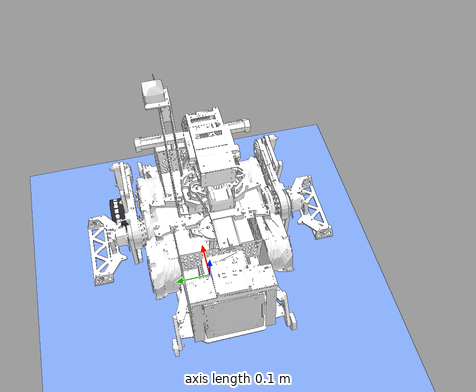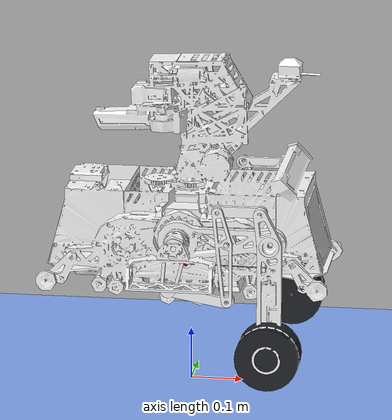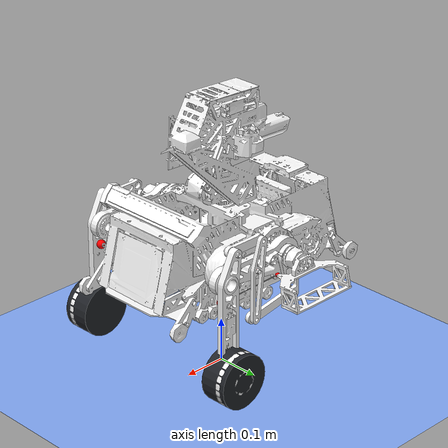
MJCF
<?xml version='1.0' encoding='utf-8'?>
<mujoco model="infantry_balance_v1_fix">
  <compiler angle="radian" meshdir="../../../infantry_V4/meshes" autolimits="true" />
  <default>
    <geom contype="1" conaffinity="2" />
  </default>
  <asset>
    <mesh name="base_Link_del" file="base_link_del.STL" />
    <mesh name="rf0_Link" file="rf0_Link.STL" />
    <mesh name="rf1_Link" file="rf1_Link.STL" />
    <mesh name="r_wheel_Link" file="r_wheel_Link.STL" />
    <mesh name="lf0_Link" file="lf0_Link.STL" />
    <mesh name="lf1_Link" file="lf1_Link.STL" />
    <mesh name="l_wheel_Link" file="l_wheel_Link.STL" />
    <mesh name="r20_Link" file="r20_Link.STL" />
    <mesh name="r21_Link" file="r21_Link.STL" />
    <mesh name="r22_Link" file="r22_Link.STL" />
    <mesh name="r23_Link" file="r23_Link.STL" />
    <mesh name="l20_Link" file="l20_Link.STL" />
    <mesh name="l21_Link" file="l21_Link.STL" />
    <mesh name="l22_Link" file="l22_Link.STL" />
    <mesh name="l23_Link" file="l23_Link.STL" />
    <material name="floor_gray" rgba="0.65 0.65 0.65 1" specular="0.15" shininess="0.6" />
    <texture name="blue_checker_tex" type="2d" builtin="checker" width="512" height="512" rgb1="0.2 0.4 0.9" rgb2="0.8 0.9 1.0" />
    <material name="blue_checker_mat" texture="blue_checker_tex" texrepeat="20 20" reflectance="0.1" />
  </asset>
  <worldbody>
    <geom name="floor" type="plane" size="40 40 0.1" material="blue_checker_mat" contype="2" conaffinity="1" condim="3" friction="1.0 0.005 0.0001" />
    <body name="base_Link_del" pos="0 0 0.24" quat="1 0 0 0">
      <freejoint />
      <inertial mass="14.528116" pos="-0.0040606 0 0.09714204" fullinertia="0.28353 0.35249 0.3701 0 -0.00825907 0" />
      <site name="imu_site" pos="0 0 0" size="0.005" />
      <camera name="follow_cam" pos="0 0 0.45" xyaxes="0 1 0 0 0 1" fovy="55" />
      <geom name="base_Link_del_geom" type="mesh" rgba="1 1 1 1" mesh="base_Link_del" priority="2" condim="1" friction="0 0 0" />
      <body name="rf0_Link" pos="0 -0.1877 0.08725" quat="0.707105 0.707108 0 0">
        <inertial mass="1.113" pos="0.0552763 -0.0165544 -0.00927161" fullinertia="0.00207010035495505 0.00467305160669649 0.00640363563267114 -0.000229068850401246 -0.000154292053832576 0.000110059488301974" />
        <joint name="rf0_Joint" pos="0 0 0" axis="0 0 1" armature="0.01" range="-100 100" actuatorfrcrange="-30 30" damping="0.2" />
        <geom type="mesh" rgba="1 1 1 1" mesh="rf0_Link" />
        <site name="Right_front_site1" pos="0.09435 0 0.01" size="0.005" rgba="1 0 0 1" />
        <site name="right_lf0_qitanhuang" pos="0.0155 -0.0445 -0.008" size="0.005" rgba="1 0 0 1" />
        <body name="rf1_Link" pos="0.17472 0 0">
          <inertial mass="0.3068715" pos="-0.00283459 -0.0710676 0.0068255" fullinertia="0.0024736574226837 9.26198217762108e-05 0.00253995979605196 0.00012490198105544 -3.42013651698976e-06 3.43411588191672e-05" />
          <joint name="rf1_Joint" pos="0 0 0" axis="0 0 1" armature="0.01" range="-1.1 0.63" actuatorfrcrange="-30 30" damping="0.2" />
          <geom type="mesh" rgba="1 1 1 1" mesh="rf1_Link" />
          <site name="Right_front_site2" pos="-0.0160931 0.0609099 0.01" size="0.005" rgba="1 0 0 1" />
          <site name="right_lf1_qitanhuang" pos="0.005 -0.046 -0.005" size="0.01" rgba="1 0 0 1" />
          <body name="r_wheel_Link" pos="0 -0.208 0.016">
            <inertial mass="0.4904" pos="4.1184e-06 -0.00019289 0.019562" fullinertia="0.00033958 0.00034133 0.0005817 0 0 0" />
            <joint name="r_wheel_Joint" pos="0 0 0" axis="0 0 1" actuatorfrcrange="-30 30" armature="0.005" damping="0.02" />
            <geom type="mesh" rgba="1 1 1 1" mesh="r_wheel_Link" contype="0" conaffinity="0" />
            <geom name="r_wheel_Link_collision" type="cylinder" size="0.06 0.03075" pos="0 0 0.00765" rgba="0.13 0.14 0.16 1" friction="1.0 0.005 0.0001" condim="3" />
          </body>
        </body>
      </body>
      <body name="lf0_Link" pos="0 0.1877 0.08725" quat="0.707105 -0.707108 0 0">
        <inertial mass="1.113" pos="0.0552763 0.0165544 -0.00927161" fullinertia="0.00207010035495505 0.00467305160669649 0.00640363563267114 0.000229068850401246 -0.000154292053832576 -0.000110059488301974" />
        <joint name="lf0_Joint" pos="0 0 0" axis="0 0 1" armature="0.01" range="-100 100" actuatorfrcrange="-30 30" damping="0.2" />
        <geom type="mesh" rgba="1 1 1 1" mesh="lf0_Link" />
        <site name="Left_front_site1" pos="0.09435 0 0.01" size="0.005" rgba="1 0 0 1" />
        <site name="left_lf0_qitanhuang" pos="0.0155 0.0445 -0.008" size="0.005" rgba="1 0 0 1" />
        <body name="lf1_Link" pos="0.17472 0 0">
          <inertial mass="0.3068715" pos="-0.00283459 0.0710676 0.0068255" fullinertia="0.0024736574226837 9.26198217762108e-05 0.00253995979605196 -0.00012490198105544 -3.42013651698976e-06 -3.43411588191672e-05" />
          <joint name="lf1_Joint" pos="0 0 0" axis="0 0 1" armature="0.01" range="-0.63 1.1" actuatorfrcrange="-30 30" damping="0.2" />
          <geom type="mesh" rgba="1 1 1 1" mesh="lf1_Link" />
          <site name="Left_front_site2" pos="-0.0160931 -0.0609099 0.01" size="0.005" rgba="1 0 0 1" />
          <site name="left_lf1_qitanhuang" pos="0.005 0.046 -0.005" size="0.01" rgba="1 0 0 1" />
          <body name="l_wheel_Link" pos="0 0.208 0.016">
            <inertial mass="0.4904" pos="4.1184e-06 0.00019289 0.019562" fullinertia="0.00033958 0.00034133 0.0005817 0 0 0" />
            <joint name="l_wheel_Joint" pos="0 0 0" axis="0 0 1" actuatorfrcrange="-30 30" armature="0.005" damping="0.02" />
            <geom type="mesh" rgba="1 1 1 1" mesh="l_wheel_Link" contype="0" conaffinity="0" />
            <geom name="l_wheel_Link_collision" type="cylinder" size="0.06 0.03075" pos="0 0 0.00765" rgba="0.13 0.14 0.16 1" friction="1.0 0.005 0.0001" condim="3" />
          </body>
        </body>
      </body>
      <body name="r20_Link" pos="0 -0.1877 0.08725" quat="0.707105 0.707108 0 0">
        <inertial mass="0.058433" pos="-0.0077129 -0.044014 0.0053168" fullinertia="8.85970403521288e-05 1.39009997800118e-05 0.000101650459867859 -1.35039754979669e-05 8.2593672519935e-08 4.71265134088624e-07" />
        <joint name="r20_Joint" pos="0 0 0" axis="0 0 1" armature="0.01" actuatorfrcrange="-30 30" damping="0.2" />
        <geom type="mesh" rgba="1 1 1 1" mesh="r20_Link" />
        <body name="r21_Link" pos="-0.016285 -0.092933 0.01">
          <inertial mass="0.042999" pos="0.05374 -0.013258 -0.01451" fullinertia="5.05620226858981e-06 7.38600092966831e-05 7.83150484347271e-05 1.27210140607606e-05 -1.64724699256455e-08 4.38524245406523e-08" />
          <joint name="r21_Link" pos="0 0 0" axis="0 0 1" actuatorfrcrange="-30 30" armature="0.01" damping="0.2" />
          <geom type="mesh" rgba="1 1 1 1" mesh="r21_Link" />
          <body name="r22_Link" pos="0.11063 -0.019387 0">
            <inertial mass="0.065877" pos="-0.006381 0.08888 -0.0045" fullinertia="0.000203739700027235 8.19437997276475e-06 0.00021104 1.8758894496219e-05 1.17150733558447e-20 0" />
            <joint name="r22_Joint" pos="0 0 0" axis="0 0 1" actuatorfrcrange="-30 30" armature="0.01" damping="0.2" />
            <geom type="mesh" rgba="1 1 1 1" mesh="r22_Link" />
            <site name="Right_rear_site1" pos="0 0.11232 0" size="0.005" rgba="1 1 0 1" />
            <body name="r23_Link" pos="-0.018032 0.17268 0">
              <inertial mass="0.010945" pos="0.040186 0 -0.014509" fullinertia="6.2034e-07 9.8695e-06 1.0337e-05 0 0 0" />
              <joint name="r23_Joint" pos="0 0 0" axis="0 0 1" actuatorfrcrange="-30 30" armature="0.01" damping="0.2" />
              <geom type="mesh" rgba="1 1 1 1" mesh="r23_Link" />
              <site name="Right_rear_site2" pos="0.08037 0 0" size="0.005" rgba="1 1 0 1" />
            </body>
          </body>
        </body>
      </body>
      <body name="l20_Link" pos="0 0.1877 0.08725" quat="0.707105 -0.707108 0 0">
        <inertial mass="0.058433" pos="-0.0077129 0.044014 0.0053168" fullinertia="8.85970403521288e-05 1.39009997800118e-05 0.000101650459867859 1.35039754979669e-05 8.2593672519935e-08 -4.71265134088624e-07" />
        <joint name="l20_Joint" pos="0 0 0" axis="0 0 1" armature="0.01" actuatorfrcrange="-30 30" damping="0.2" />
        <geom type="mesh" rgba="1 1 1 1" mesh="l20_Link" />
        <body name="l21_Link" pos="-0.016285 0.092933 0.01">
          <inertial mass="0.042999" pos="0.05374 0.013258 -0.01451" fullinertia="5.05620226858981e-06 7.38600092966831e-05 7.83150484347271e-05 -1.27210140607606e-05 -1.64724699256455e-08 -4.38524245406523e-08" />
          <joint name="l21_Joint" pos="0 0 0" axis="0 0 1" actuatorfrcrange="-30 30" armature="0.01" damping="0.2" />
          <geom type="mesh" rgba="1 1 1 1" mesh="l21_Link" />
          <body name="l22_Link" pos="0.11063 0.019387 0">
            <inertial mass="0.065877" pos="-0.006381 -0.08888 -0.0045" fullinertia="0.000203739700027235 8.19437997276475e-06 0.00021104 -1.8758894496219e-05 1.17150733558447e-20 0" />
            <joint name="l22_Joint" pos="0 0 0" axis="0 0 1" actuatorfrcrange="-30 30" armature="0.01" damping="0.2" />
            <geom type="mesh" rgba="1 1 1 1" mesh="l22_Link" />
            <site name="Left_rear_site1" pos="0 -0.11232 0" size="0.005" rgba="1 1 0 1" />
            <body name="l23_Link" pos="-0.018032 -0.17268 0">
              <inertial mass="0.010945" pos="0.040186 0 -0.014509" fullinertia="6.2034e-07 9.8695e-06 1.0337e-05 0 0 0" />
              <joint name="l23_Joint" pos="0 0 0" axis="0 0 1" actuatorfrcrange="-30 30" armature="0.01" damping="0.2" />
              <geom type="mesh" rgba="1 1 1 1" mesh="l23_Link" />
              <site name="Left_rear_site2" pos="0.08037 0 0" size="0.005" rgba="1 1 0 1" />
            </body>
          </body>
        </body>
      </body>
    </body>
    <light pos="0 0 3" dir="0 0 -1" directional="true" />
  </worldbody>
  <equality>
    <connect name="Left_loop1" site1="Left_front_site1" site2="Left_rear_site1" solref="0.006 1" solimp="0.99 0.99 0.01 0.5 2" />
    <connect name="Left_loop2" site1="Left_front_site2" site2="Left_rear_site2" solref="0.006 1" solimp="0.99 0.99 0.01 0.5 2" />
    <connect name="Right_loop1" site1="Right_front_site1" site2="Right_rear_site1" solref="0.006 1" solimp="0.99 0.99 0.01 0.5 2" />
    <connect name="Right_loop2" site1="Right_front_site2" site2="Right_rear_site2" solref="0.006 1" solimp="0.99 0.99 0.01 0.5 2" />
  </equality>
  <option timestep="0.002" integrator="implicitfast" solver="Newton" iterations="60" tolerance="1e-8" />
  <actuator>
    <position name="act_lf0_Joint" joint="lf0_Joint" kp="240" kv="8" forcerange="-30 30" />
    <position name="act_l20_Joint" joint="l20_Joint" kp="240" kv="8" forcerange="-30 30" />
    <position name="act_rf0_Joint" joint="rf0_Joint" kp="240" kv="8" forcerange="-30 30" />
    <position name="act_r20_Joint" joint="r20_Joint" kp="240" kv="8" forcerange="-30 30" />
    <motor name="act_l_wheel_Joint" joint="l_wheel_Joint" gear="1" ctrlrange="-12 12" forcerange="-12 12" />
    <motor name="act_r_wheel_Joint" joint="r_wheel_Joint" gear="1" ctrlrange="-12 12" forcerange="-12 12" />
    <motor name="left_gas_motor" tendon="left_gas_tendon" gear="1" ctrllimited="true" ctrlrange="0 300" forcelimited="true" forcerange="0 300" />
    <motor name="right_gas_motor" tendon="right_gas_tendon" gear="1" ctrllimited="true" ctrlrange="0 300" forcelimited="true" forcerange="0 300" />
  </actuator>
  <statistic center="0 0 0.25" extent="1.2" />
  <keyframe>
    <key name="stand" qpos="0.0000000000 0.0000000000 0.2400000000 1.0000000000 0.0000000000 0.0000000000 0.0000000000 -0.6544832533 -0.0469925776 0.0000000000 0.6544832533 0.0469925776 0.0000000000 -0.7475915797 0.0789298843 -0.0647924114 0.0790234903 0.7475915797 -0.0789298843 0.0647924114 -0.0790234903" ctrl="0.6544832533 0.7475915797 -0.6544832533 -0.7475915797 0.0000000000 0.0000000000 0 0" />
  </keyframe>
  <tendon>
    <spatial name="left_gas_tendon" width="0.001">
      <site site="left_lf1_qitanhuang" />
      <site site="left_lf0_qitanhuang" />
    </spatial>
    <spatial name="right_gas_tendon" width="0.001">
      <site site="right_lf1_qitanhuang" />
      <site site="right_lf0_qitanhuang" />
    </spatial>
  </tendon>
</mujoco>
